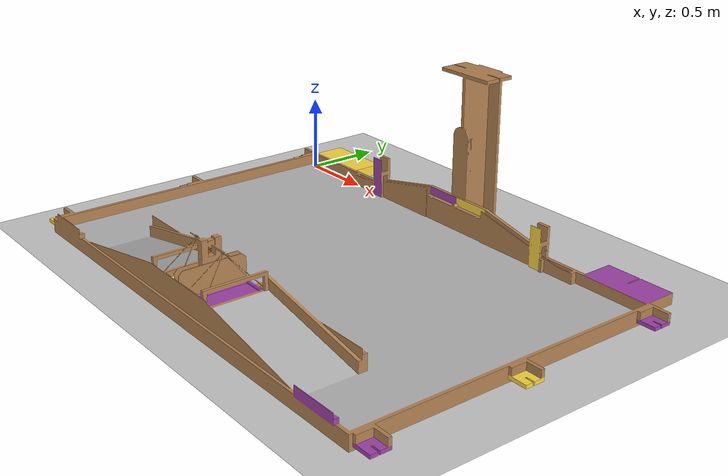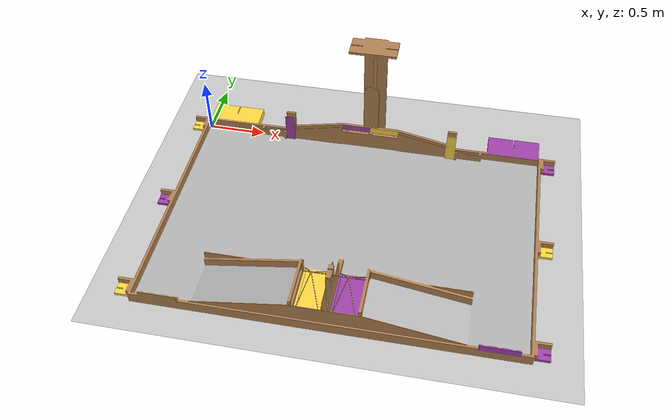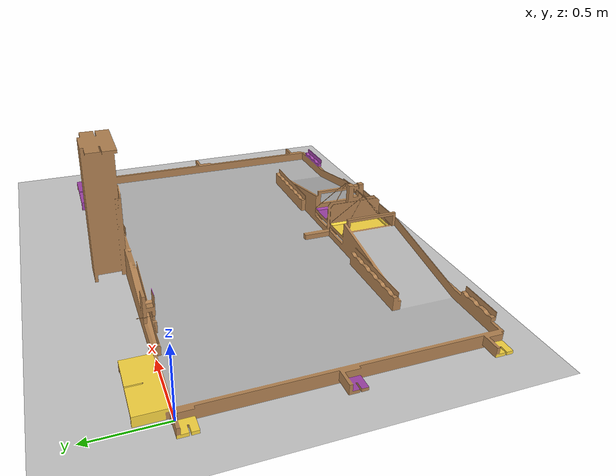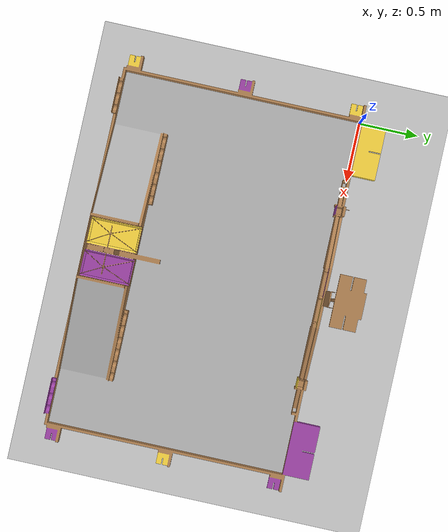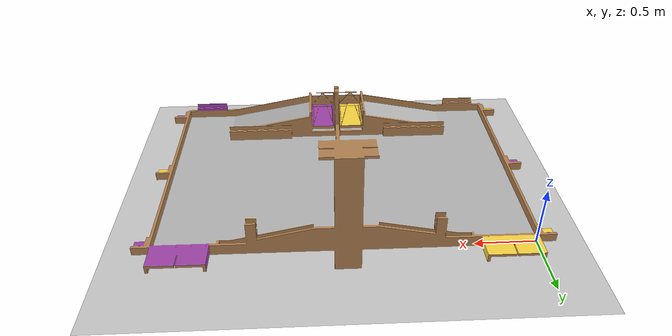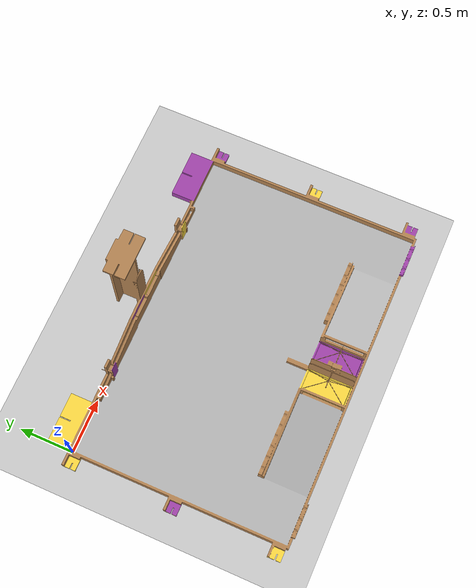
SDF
<sdf version="1.6">
 <world name="default">
  <light name="sun" type="directional">
   <pose>0 0 10 0 -0 0</pose>
   <diffuse>0.8 0.8 0.8 1</diffuse>
   <specular>0.2 0.2 0.2 1</specular>
   <attenuation>
    <range>1000</range>
    <constant>0.9</constant>
    <linear>0.01</linear>
    <quadratic>0.001</quadratic>
   </attenuation>
   <direction>-0.5 0.1 -0.9</direction>
  </light>
  <model name="ground_plane">
   <static>1</static>
   <link name="link">
    <collision name="collision">
     <geometry><plane><normal>0 0 1</normal><size>100 100</size></plane></geometry>
     <surface><friction><ode><mu>100</mu><mu2>50</mu2></ode></friction></surface>
    </collision>
    <visual name="visual">
     <cast_shadows>0</cast_shadows>
     <geometry><plane><normal>0 0 1</normal><size>100 100</size></plane></geometry>
     <material>
      <script><uri>file://media/materials/scripts/gazebo.material</uri><name>Gazebo/Grey</name></script>
     </material>
    </visual>
   </link>
  </model>
  <gravity>0 0 -9.8</gravity>
  <magnetic_field>6e-06 2.3e-05 -4.2e-05</magnetic_field>
  <atmosphere type="adiabatic"/>
  <physics name="default_physics" default="0" type="ode">
   <max_step_size>0.001</max_step_size>
   <real_time_factor>1</real_time_factor>
   <real_time_update_rate>1000</real_time_update_rate>
  </physics>
  <scene><ambient>0.4 0.4 0.4 1</ambient><background>0.7 0.7 0.7 1</background><shadows>1</shadows></scene>
  <spherical_coordinates>
   <surface_model>EARTH_WGS84</surface_model>
   <latitude_deg>0</latitude_deg>
   <longitude_deg>0</longitude_deg>
   <elevation>0</elevation>
   <heading_deg>0</heading_deg>
  </spherical_coordinates>
  <model name="eurobot2019">
   <link name="base_link">
    <inertial>
     <pose>1.5 -0.97131 0.064683 0 -0 0</pose>
     <mass>217.15</mass>
     <inertia>
      <ixx>117.72</ixx>
      <ixy>0.001115</ixy>
      <ixz>8.0681e-05</ixz>
      <iyy>162.37</iyy>
      <iyz>-6.3727</iyz>
      <izz>270.51</izz>
     </inertia>
    </inertial>
    <collision name="base_link_collision">
     <geometry>
      <mesh>
       <scale>1 1 1</scale>
       <uri>/home/rospc/catkin_ws/src/ros_eurobot2019/gazebo/eurobot2019/meshes/base_link1.dae</uri>
      </mesh>
     </geometry>
    </collision>
    <visual name="base_link_visual">
     <geometry>
      <mesh>
       <scale>1 1 1</scale>
       <uri>/home/rospc/catkin_ws/src/ros_eurobot2019/gazebo/eurobot2019/meshes/base_link1.dae</uri>
      </mesh>
     </geometry>
    </visual>
   </link>
   <joint name="world_fixed" type="fixed"><child>base_link</child><parent>world</parent></joint>
  </model>
  <light name="user_point_light_0" type="point">
   <pose>1.50086 -0.516539 1 0 -0 0</pose>
   <diffuse>0.5 0.5 0.5 1</diffuse>
   <specular>0.1 0.1 0.1 1</specular>
   <attenuation>
    <range>20</range>
    <constant>0.5</constant>
    <linear>0.01</linear>
    <quadratic>0.001</quadratic>
   </attenuation>
   <cast_shadows>0</cast_shadows>
   <direction>0 0 -1</direction>
  </light>
 </world>
</sdf>
